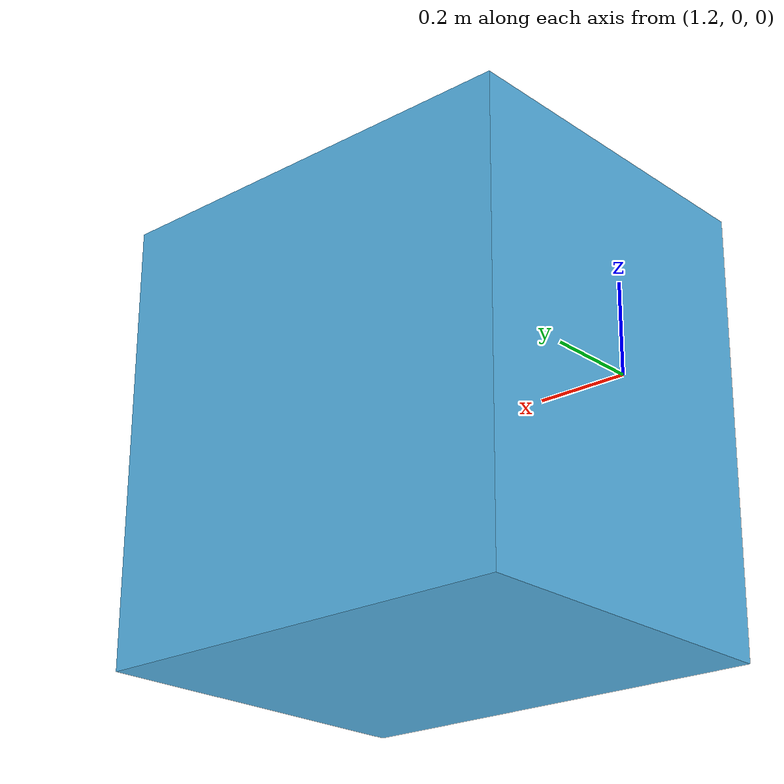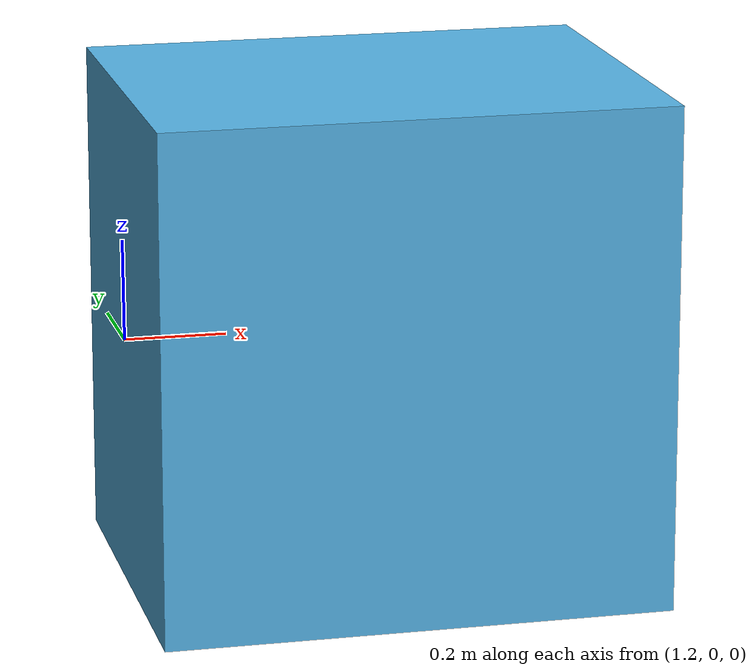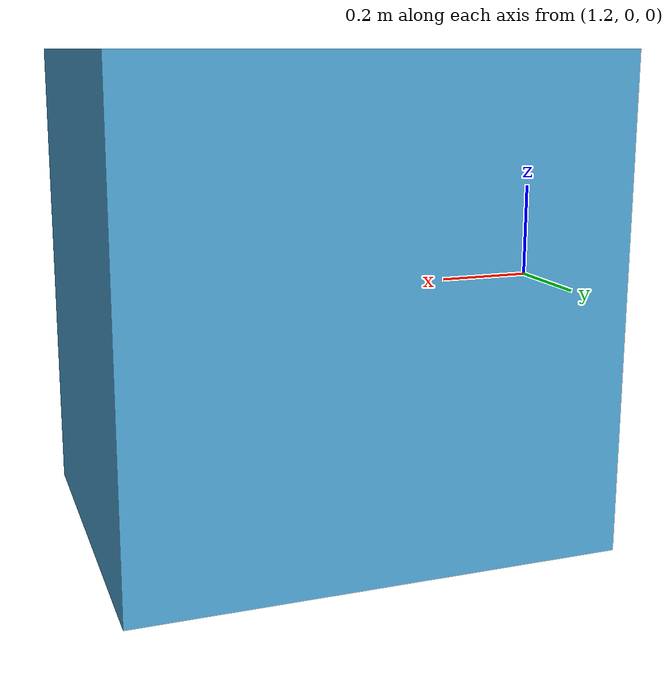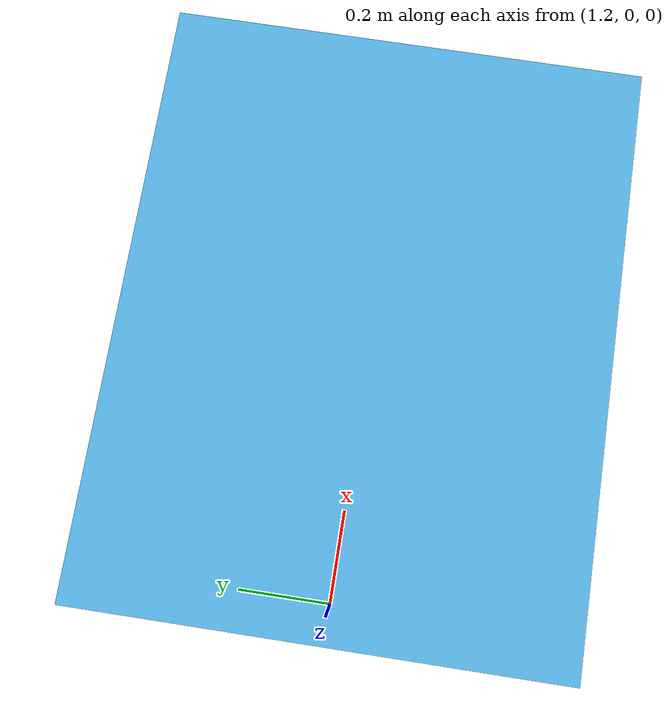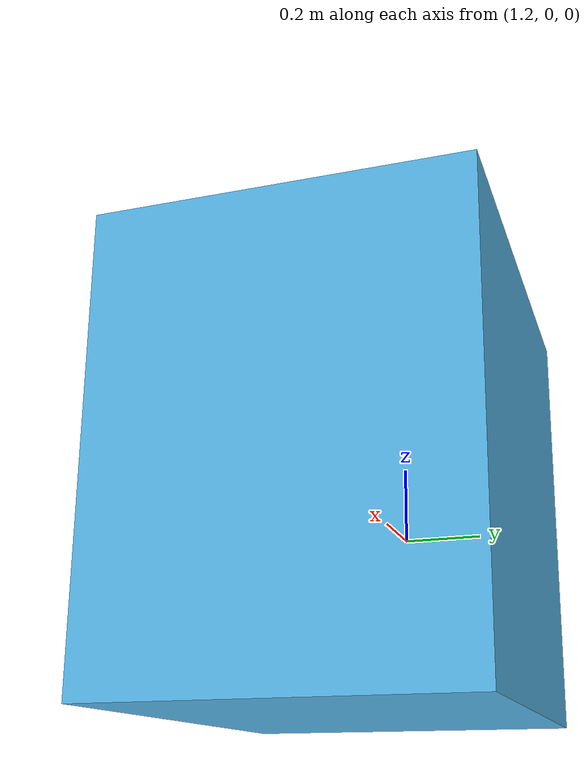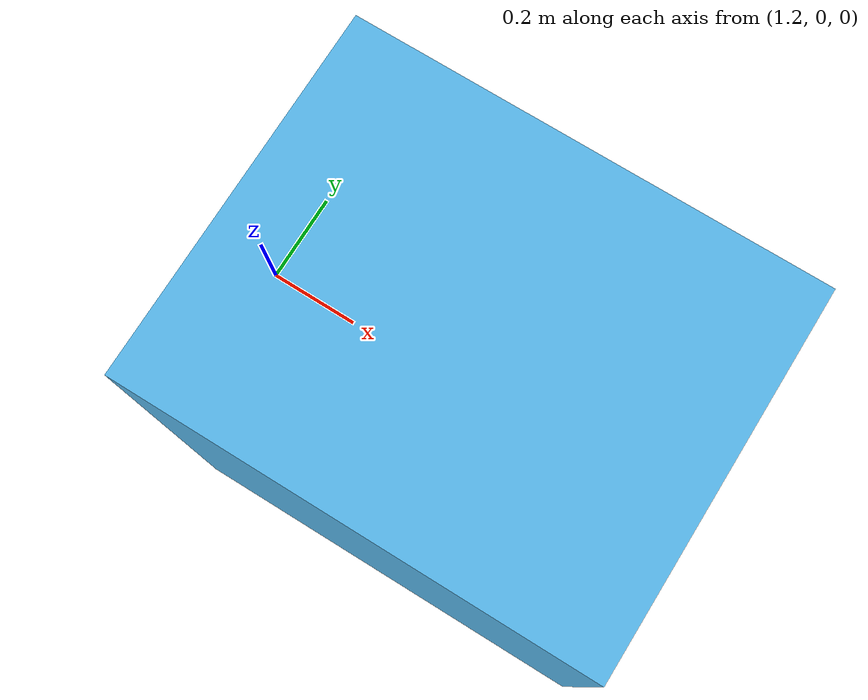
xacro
<?xml version="1.0"?>
<robot name="table" xmlns:xacro="http://wiki.ros.org/xacro">

    <link name="world"/>

    <link name="table">
      <inertial>
        <origin xyz="0.7 0 0" rpy="0 0 0"/>
        <mass value="2"/>
        <inertia ixx="0.01" ixy="0" ixz="0" iyy="0.01" iyz="0" izz="0.01" />
      </inertial>
      <visual>
        <origin xyz="0.7 0 0" rpy="0 0 0"/>
        <geometry>
          <box size="1 0.8 1"/>
        </geometry>
      </visual>
      <collision>
        <origin xyz="0.7 0 0" rpy="0 0 0"/>
        <geometry>
          <box size="1 0.8 1"/>
        </geometry>
      </collision>
    </link>

    <joint name="joint" type="fixed">
        <origin rpy="0 0 0" xyz="1 0 0"/>
        <parent link="world"/>
        <child link="table"/>
    </joint>

    <gazebo reference="my_box" >
        <material>Gazebo/Blue</material>
    </gazebo>

</robot>
